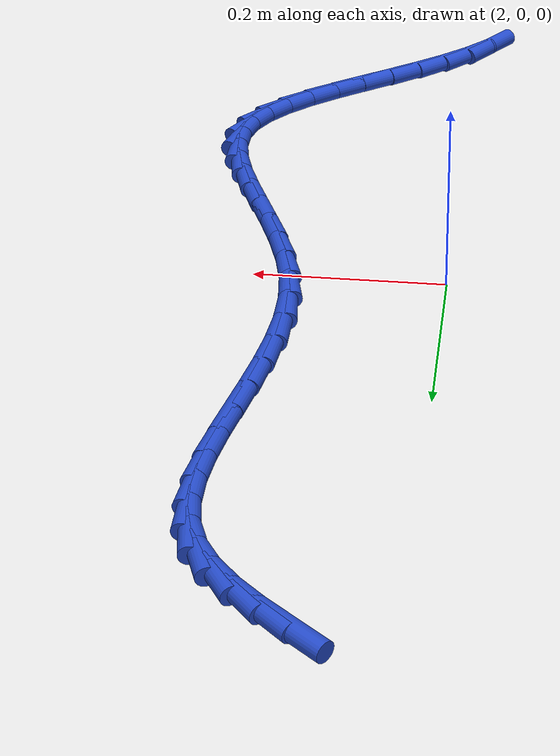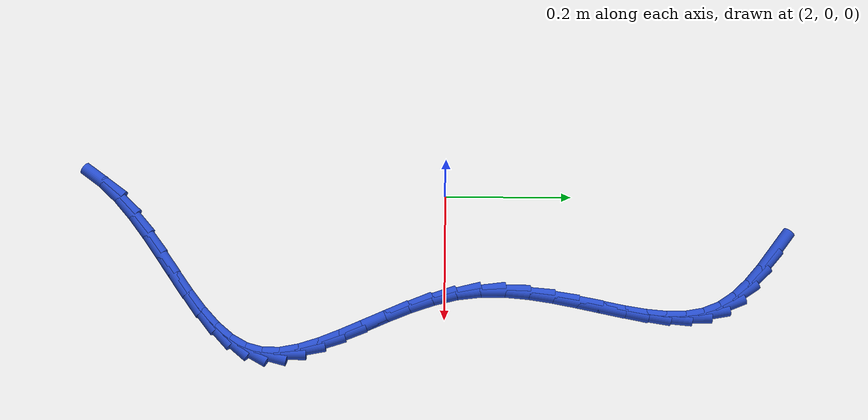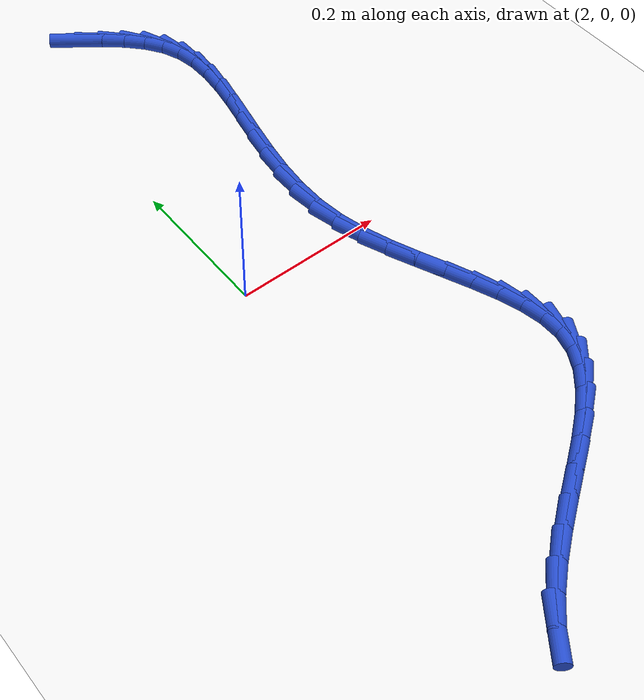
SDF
<sdf version="1.6">
 <world name="default">
  <model name="ground_plane">
   <static>1</static>
   <link name="link">
    <collision name="collision">
     <geometry><plane><normal>0 0 1</normal><size>100 100</size></plane></geometry>
     <surface><friction><ode><mu>100</mu><mu2>50</mu2></ode></friction></surface>
    </collision>
    <visual name="visual">
     <cast_shadows>0</cast_shadows>
     <geometry><plane><normal>0 0 1</normal><size>100 100</size></plane></geometry>
     <material>
      <script><uri>file://media/materials/scripts/gazebo.material</uri><name>Gazebo/WhiteGlow</name></script>
     </material>
    </visual>
   </link>
  </model>
  <model name="line">
   <link name="link_93">
    <pose>2.087906772784719 0.5198487326077345 0.01 0 1.57 -0.6412044839459847</pose>
    <collision name="collision">
     <geometry><cylinder><radius>0.01</radius><length>0.08</length></cylinder></geometry>
    </collision>
    <visual name="visual">
     <material>
      <script><name>Gazebo/Blue</name><uri>file://media/materials/scripts/gazebo.material</uri></script>
     </material>
     <geometry><cylinder><radius>0.01</radius><length>0.08</length></cylinder></geometry>
    </visual>
   </link>
   <link name="link_94">
    <pose>2.115585167796734 0.49918908900090053 0.01 0 1.57 -0.7052833487119702</pose>
    <collision name="collision">
     <geometry><cylinder><radius>0.01</radius><length>0.08</length></cylinder></geometry>
    </collision>
    <visual name="visual">
     <material>
      <script><name>Gazebo/Blue</name><uri>file://media/materials/scripts/gazebo.material</uri></script>
     </material>
     <geometry><cylinder><radius>0.01</radius><length>0.08</length></cylinder></geometry>
    </visual>
   </link>
   <link name="link_95">
    <pose>2.140487691562775 0.47798806502434216 0.01 0 1.57 -0.8124716799559826</pose>
    <collision name="collision">
     <geometry><cylinder><radius>0.01</radius><length>0.08</length></cylinder></geometry>
    </collision>
    <visual name="visual">
     <material>
      <script><name>Gazebo/Blue</name><uri>file://media/materials/scripts/gazebo.material</uri></script>
     </material>
     <geometry><cylinder><radius>0.01</radius><length>0.08</length></cylinder></geometry>
    </visual>
   </link>
   <link name="link_96">
    <pose>2.161628075213824 0.45567084363868976 0.01 0 1.57 -0.9717316118404048</pose>
    <collision name="collision">
     <geometry><cylinder><radius>0.01</radius><length>0.08</length></cylinder></geometry>
    </collision>
    <visual name="visual">
     <material>
      <script><name>Gazebo/Blue</name><uri>file://media/materials/scripts/gazebo.material</uri></script>
     </material>
     <geometry><cylinder><radius>0.01</radius><length>0.08</length></cylinder></geometry>
    </visual>
   </link>
   <link name="link_97">
    <pose>2.1780200498808684 0.4316626078045734 0.01 0 1.57 -1.183030072355164</pose>
    <collision name="collision">
     <geometry><cylinder><radius>0.01</radius><length>0.08</length></cylinder></geometry>
    </collision>
    <visual name="visual">
     <material>
      <script><name>Gazebo/Blue</name><uri>file://media/materials/scripts/gazebo.material</uri></script>
     </material>
     <geometry><cylinder><radius>0.01</radius><length>0.08</length></cylinder></geometry>
    </visual>
   </link>
   <link name="link_98">
    <pose>2.1887407127020486 0.40541517405842603 0.01 0 1.57 -1.3918652810319683</pose>
    <collision name="collision">
     <geometry><cylinder><radius>0.01</radius><length>0.08</length></cylinder></geometry>
    </collision>
    <visual name="visual">
     <material>
      <script><name>Gazebo/Blue</name><uri>file://media/materials/scripts/gazebo.material</uri></script>
     </material>
     <geometry><cylinder><radius>0.01</radius><length>0.08</length></cylinder></geometry>
    </visual>
   </link>
   <link name="link_99">
    <pose>2.193912629298068 0.3768197832483757 0.01 0 1.57 -1.5511382767694404</pose>
    <collision name="collision">
     <geometry><cylinder><radius>0.01</radius><length>0.08</length></cylinder></geometry>
    </collision>
    <visual name="visual">
     <material>
      <script><name>Gazebo/Blue</name><uri>file://media/materials/scripts/gazebo.material</uri></script>
     </material>
     <geometry><cylinder><radius>0.01</radius><length>0.08</length></cylinder></geometry>
    </visual>
   </link>
   <link name="link_100">
    <pose>2.1945160442940255 0.34612817011829844 0.01 0 1.57 1.4800560255774426</pose>
    <collision name="collision">
     <geometry><cylinder><radius>0.01</radius><length>0.08</length></cylinder></geometry>
    </collision>
    <visual name="visual">
     <material>
      <script><name>Gazebo/Blue</name><uri>file://media/materials/scripts/gazebo.material</uri></script>
     </material>
     <geometry><cylinder><radius>0.01</radius><length>0.08</length></cylinder></geometry>
    </visual>
   </link>
   <link name="link_101">
    <pose>2.191556548297834 0.31360272266584016 0.01 0 1.57 1.410388233225859</pose>
    <collision name="collision">
     <geometry><cylinder><radius>0.01</radius><length>0.08</length></cylinder></geometry>
    </collision>
    <visual name="visual">
     <material>
      <script><name>Gazebo/Blue</name><uri>file://media/materials/scripts/gazebo.material</uri></script>
     </material>
     <geometry><cylinder><radius>0.01</radius><length>0.08</length></cylinder></geometry>
    </visual>
   </link>
   <link name="link_102">
    <pose>2.186039731917405 0.2795058288886454 0.01 0 1.57 1.3737441775888566</pose>
    <collision name="collision">
     <geometry><cylinder><radius>0.01</radius><length>0.08</length></cylinder></geometry>
    </collision>
    <visual name="visual">
     <material>
      <script><name>Gazebo/Blue</name><uri>file://media/materials/scripts/gazebo.material</uri></script>
     </material>
     <geometry><cylinder><radius>0.01</radius><length>0.08</length></cylinder></geometry>
    </visual>
   </link>
   <link name="link_103">
    <pose>2.17897118576065 0.24409987678435988 0.01 0 1.57 1.3648649357464215</pose>
    <collision name="collision">
     <geometry><cylinder><radius>0.01</radius><length>0.08</length></cylinder></geometry>
    </collision>
    <visual name="visual">
     <material>
      <script><name>Gazebo/Blue</name><uri>file://media/materials/scripts/gazebo.material</uri></script>
     </material>
     <geometry><cylinder><radius>0.01</radius><length>0.08</length></cylinder></geometry>
    </visual>
   </link>
   <link name="link_104">
    <pose>2.171356500435481 0.2076472543506278 0.01 0 1.57 1.3809558997403137</pose>
    <collision name="collision">
     <geometry><cylinder><radius>0.01</radius><length>0.08</length></cylinder></geometry>
    </collision>
    <visual name="visual">
     <material>
      <script><name>Gazebo/Blue</name><uri>file://media/materials/scripts/gazebo.material</uri></script>
     </material>
     <geometry><cylinder><radius>0.01</radius><length>0.08</length></cylinder></geometry>
    </visual>
   </link>
   <link name="link_105">
    <pose>2.1642012665498105 0.17041034958509532 0.01 0 1.57 1.4212233856789642</pose>
    <collision name="collision">
     <geometry><cylinder><radius>0.01</radius><length>0.08</length></cylinder></geometry>
    </collision>
    <visual name="visual">
     <material>
      <script><name>Gazebo/Blue</name><uri>file://media/materials/scripts/gazebo.material</uri></script>
     </material>
     <geometry><cylinder><radius>0.01</radius><length>0.08</length></cylinder></geometry>
    </visual>
   </link>
   <link name="link_106">
    <pose>2.1585110747115492 0.13265155048540653 0.01 0 1.57 1.4863134497954895</pose>
    <collision name="collision">
     <geometry><cylinder><radius>0.01</radius><length>0.08</length></cylinder></geometry>
    </collision>
    <visual name="visual">
     <material>
      <script><name>Gazebo/Blue</name><uri>file://media/materials/scripts/gazebo.material</uri></script>
     </material>
     <geometry><cylinder><radius>0.01</radius><length>0.08</length></cylinder></geometry>
    </visual>
   </link>
   <link name="link_107">
    <pose>2.15529151552861 0.09463324504920748 0.01 0 1.57 -1.5640448518669674</pose>
    <collision name="collision">
     <geometry><cylinder><radius>0.01</radius><length>0.08</length></cylinder></geometry>
    </collision>
    <visual name="visual">
     <material>
      <script><name>Gazebo/Blue</name><uri>file://media/materials/scripts/gazebo.material</uri></script>
     </material>
     <geometry><cylinder><radius>0.01</radius><length>0.08</length></cylinder></geometry>
    </visual>
   </link>
   <link name="link_108">
    <pose>2.1555481796089033 0.056617821274142346 0.01 0 1.57 -1.4463234934684444</pose>
    <collision name="collision">
     <geometry><cylinder><radius>0.01</radius><length>0.08</length></cylinder></geometry>
    </collision>
    <visual name="visual">
     <material>
      <script><name>Gazebo/Blue</name><uri>file://media/materials/scripts/gazebo.material</uri></script>
     </material>
     <geometry><cylinder><radius>0.01</radius><length>0.08</length></cylinder></geometry>
    </visual>
   </link>
   <link name="link_109">
    <pose>2.160271565875849 0.018866875939460306 0.01 0 1.57 -1.3258726512545482</pose>
    <collision name="collision">
     <geometry><cylinder><radius>0.01</radius><length>0.08</length></cylinder></geometry>
    </collision>
    <visual name="visual">
     <material>
      <script><name>Gazebo/Blue</name><uri>file://media/materials/scripts/gazebo.material</uri></script>
     </material>
     <geometry><cylinder><radius>0.01</radius><length>0.08</length></cylinder></geometry>
    </visual>
   </link>
   <link name="link_110">
    <pose>2.1695869463549586 -0.018403355807647168 0.01 0 1.57 -1.236813923747802</pose>
    <collision name="collision">
     <geometry><cylinder><radius>0.01</radius><length>0.08</length></cylinder></geometry>
    </collision>
    <visual name="visual">
     <material>
      <script><name>Gazebo/Blue</name><uri>file://media/materials/scripts/gazebo.material</uri></script>
     </material>
     <geometry><cylinder><radius>0.01</radius><length>0.08</length></cylinder></geometry>
    </visual>
   </link>
   <link name="link_111">
    <pose>2.1823011502587017 -0.055045761402648705 0.01 0 1.57 -1.1792910309484426</pose>
    <collision name="collision">
     <geometry><cylinder><radius>0.01</radius><length>0.08</length></cylinder></geometry>
    </collision>
    <visual name="visual">
     <material>
      <script><name>Gazebo/Blue</name><uri>file://media/materials/scripts/gazebo.material</uri></script>
     </material>
     <geometry><cylinder><radius>0.01</radius><length>0.08</length></cylinder></geometry>
    </visual>
   </link>
   <link name="link_112">
    <pose>2.19711019994061 -0.09091903760106267 0.01 0 1.57 -1.1511189710133747</pose>
    <collision name="collision">
     <geometry><cylinder><radius>0.01</radius><length>0.08</length></cylinder></geometry>
    </collision>
    <visual name="visual">
     <material>
      <script><name>Gazebo/Blue</name><uri>file://media/materials/scripts/gazebo.material</uri></script>
     </material>
     <geometry><cylinder><radius>0.01</radius><length>0.08</length></cylinder></geometry>
    </visual>
   </link>
   <link name="link_113">
    <pose>2.2127101177542174 -0.12588188115840704 0.01 0 1.57 -1.1521976433835968</pose>
    <collision name="collision">
     <geometry><cylinder><radius>0.01</radius><length>0.08</length></cylinder></geometry>
    </collision>
    <visual name="visual">
     <material>
      <script><name>Gazebo/Blue</name><uri>file://media/materials/scripts/gazebo.material</uri></script>
     </material>
     <geometry><cylinder><radius>0.01</radius><length>0.08</length></cylinder></geometry>
    </visual>
   </link>
   <link name="link_114">
    <pose>2.227796926053054 -0.1597929888302005 0.01 0 1.57 -1.1854907984119347</pose>
    <collision name="collision">
     <geometry><cylinder><radius>0.01</radius><length>0.08</length></cylinder></geometry>
    </collision>
    <visual name="visual">
     <material>
      <script><name>Gazebo/Blue</name><uri>file://media/materials/scripts/gazebo.material</uri></script>
     </material>
     <geometry><cylinder><radius>0.01</radius><length>0.08</length></cylinder></geometry>
    </visual>
   </link>
   <link name="link_115">
    <pose>2.2410666471906526 -0.19251105737195934 0.01 0 1.57 -1.2580365048535462</pose>
    <collision name="collision">
     <geometry><cylinder><radius>0.01</radius><length>0.08</length></cylinder></geometry>
    </collision>
    <visual name="visual">
     <material>
      <script><name>Gazebo/Blue</name><uri>file://media/materials/scripts/gazebo.material</uri></script>
     </material>
     <geometry><cylinder><radius>0.01</radius><length>0.08</length></cylinder></geometry>
    </visual>
   </link>
   <link name="link_116">
    <pose>2.2512153035205453 -0.22389478353920225 0.01 0 1.57 -1.381709076335192</pose>
    <collision name="collision">
     <geometry><cylinder><radius>0.01</radius><length>0.08</length></cylinder></geometry>
    </collision>
    <visual name="visual">
     <material>
      <script><name>Gazebo/Blue</name><uri>file://media/materials/scripts/gazebo.material</uri></script>
     </material>
     <geometry><cylinder><radius>0.01</radius><length>0.08</length></cylinder></geometry>
    </visual>
   </link>
   <link name="link_117">
    <pose>2.256938917396264 -0.25380286408744723 0.01 0 1.57 1.5706052342321675</pose>
    <collision name="collision">
     <geometry><cylinder><radius>0.01</radius><length>0.08</length></cylinder></geometry>
    </collision>
    <visual name="visual">
     <material>
      <script><name>Gazebo/Blue</name><uri>file://media/materials/scripts/gazebo.material</uri></script>
     </material>
     <geometry><cylinder><radius>0.01</radius><length>0.08</length></cylinder></geometry>
    </visual>
   </link>
   <link name="link_118">
    <pose>2.256933511171342 -0.28209399577221284 0.01 0 1.57 1.3138680853139675</pose>
    <collision name="collision">
     <geometry><cylinder><radius>0.01</radius><length>0.08</length></cylinder></geometry>
    </collision>
    <visual name="visual">
     <material>
      <script><name>Gazebo/Blue</name><uri>file://media/materials/scripts/gazebo.material</uri></script>
     </material>
     <geometry><cylinder><radius>0.01</radius><length>0.08</length></cylinder></geometry>
    </visual>
   </link>
   <link name="link_119">
    <pose>2.2499589780992855 -0.3086398728156344 0.01 0 1.57 1.0605475795049093</pose>
    <collision name="collision">
     <geometry><cylinder><radius>0.01</radius><length>0.08</length></cylinder></geometry>
    </collision>
    <visual name="visual">
     <material>
      <script><name>Gazebo/Blue</name><uri>file://media/materials/scripts/gazebo.material</uri></script>
     </material>
     <geometry><cylinder><radius>0.01</radius><length>0.08</length></cylinder></geometry>
    </visual>
   </link>
   <link name="link_120">
    <pose>2.2360096495612294 -0.33356339254428313 0.01 0 1.57 0.8734756583916246</pose>
    <collision name="collision">
     <geometry><cylinder><radius>0.01</radius><length>0.08</length></cylinder></geometry>
    </collision>
    <visual name="visual">
     <material>
      <script><name>Gazebo/Blue</name><uri>file://media/materials/scripts/gazebo.material</uri></script>
     </material>
     <geometry><cylinder><radius>0.01</radius><length>0.08</length></cylinder></geometry>
    </visual>
   </link>
   <link name="link_121">
    <pose>2.2161965210823573 -0.35721468886574353 0.01 0 1.57 0.747579166944702</pose>
    <collision name="collision">
     <geometry><cylinder><radius>0.01</radius><length>0.08</length></cylinder></geometry>
    </collision>
    <visual name="visual">
     <material>
      <script><name>Gazebo/Blue</name><uri>file://media/materials/scripts/gazebo.material</uri></script>
     </material>
     <geometry><cylinder><radius>0.01</radius><length>0.08</length></cylinder></geometry>
    </visual>
   </link>
   <link name="link_122">
    <pose>2.1916708300273013 -0.37995208473715397 0.01 0 1.57 0.6684617509367411</pose>
    <collision name="collision">
     <geometry><cylinder><radius>0.01</radius><length>0.08</length></cylinder></geometry>
    </collision>
    <visual name="visual">
     <material>
      <script><name>Gazebo/Blue</name><uri>file://media/materials/scripts/gazebo.material</uri></script>
     </material>
     <geometry><cylinder><radius>0.01</radius><length>0.08</length></cylinder></geometry>
    </visual>
   </link>
   <link name="link_123">
    <pose>2.1635838137606966 -0.4021339031156514 0.01 0 1.57 0.6245982997875087</pose>
    <collision name="collision">
     <geometry><cylinder><radius>0.01</radius><length>0.08</length></cylinder></geometry>
    </collision>
    <visual name="visual">
     <material>
      <script><name>Gazebo/Blue</name><uri>file://media/materials/scripts/gazebo.material</uri></script>
     </material>
     <geometry><cylinder><radius>0.01</radius><length>0.08</length></cylinder></geometry>
    </visual>
   </link>
   <link name="link_124">
    <pose>2.133086709647176 -0.4241184669583742 0.01 0 1.57 0.608958304993585</pose>
    <collision name="collision">
     <geometry><cylinder><radius>0.01</radius><length>0.08</length></cylinder></geometry>
    </collision>
    <visual name="visual">
     <material>
      <script><name>Gazebo/Blue</name><uri>file://media/materials/scripts/gazebo.material</uri></script>
     </material>
     <geometry><cylinder><radius>0.01</radius><length>0.08</length></cylinder></geometry>
    </visual>
   </link>
   <link name="link_125">
    <pose>2.1013307550513742 -0.4462640992224607 0.01 0 1.57 0.6182794172187537</pose>
    <collision name="collision">
     <geometry><cylinder><radius>0.01</radius><length>0.08</length></cylinder></geometry>
    </collision>
    <visual name="visual">
     <material>
      <script><name>Gazebo/Blue</name><uri>file://media/materials/scripts/gazebo.material</uri></script>
     </material>
     <geometry><cylinder><radius>0.01</radius><length>0.08</length></cylinder></geometry>
    </visual>
   </link>
   <link name="link_126">
    <pose>2.0694671873379225 -0.4689291228650491 0.01 0 1.57 0.6523252790606917</pose>
    <collision name="collision">
     <geometry><cylinder><radius>0.01</radius><length>0.08</length></cylinder></geometry>
    </collision>
    <visual name="visual">
     <material>
      <script><name>Gazebo/Blue</name><uri>file://media/materials/scripts/gazebo.material</uri></script>
     </material>
     <geometry><cylinder><radius>0.01</radius><length>0.08</length></cylinder></geometry>
    </visual>
   </link>
   <link name="link_127">
    <pose>2.0386472438714565 -0.49247186084327643 0.01 0 1.57 0.7134993016527961</pose>
    <collision name="collision">
     <geometry><cylinder><radius>0.01</radius><length>0.08</length></cylinder></geometry>
    </collision>
    <visual name="visual">
     <material>
      <script><name>Gazebo/Blue</name><uri>file://media/materials/scripts/gazebo.material</uri></script>
     </material>
     <geometry><cylinder><radius>0.01</radius><length>0.08</length></cylinder></geometry>
    </visual>
   </link>
   <link name="link_128">
    <pose>2.0100221620166088 -0.5172506361142813 0.01 0 1.57 0.8065781084347241</pose>
    <collision name="collision">
     <geometry><cylinder><radius>0.01</radius><length>0.08</length></cylinder></geometry>
    </collision>
    <visual name="visual">
     <material>
      <script><name>Gazebo/Blue</name><uri>file://media/materials/scripts/gazebo.material</uri></script>
     </material>
     <geometry><cylinder><radius>0.01</radius><length>0.08</length></cylinder></geometry>
    </visual>
   </link>
   <link name="link_129">
    <pose>1.984743179138013 -0.5436237716352016 0.01 0 1.57 0.9378321969180133</pose>
    <collision name="collision">
     <geometry><cylinder><radius>0.01</radius><length>0.08</length></cylinder></geometry>
    </collision>
    <visual name="visual">
     <material>
      <script><name>Gazebo/Blue</name><uri>file://media/materials/scripts/gazebo.material</uri></script>
     </material>
     <geometry><cylinder><radius>0.01</radius><length>0.08</length></cylinder></geometry>
    </visual>
   </link>
  </model>
 </world>
</sdf>
